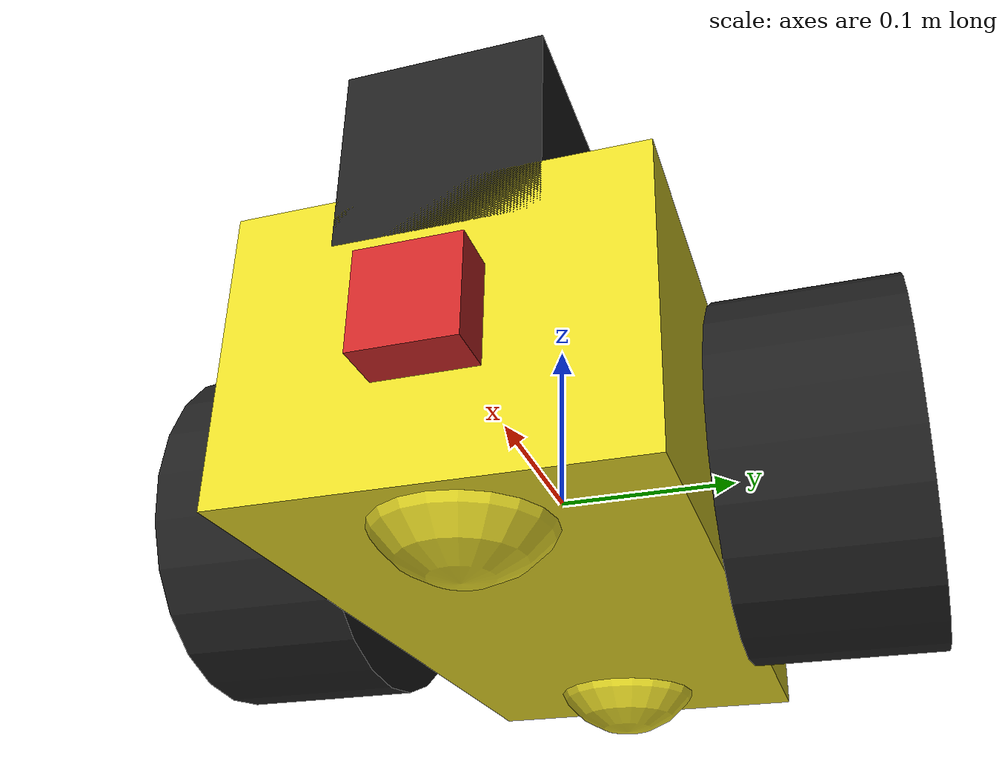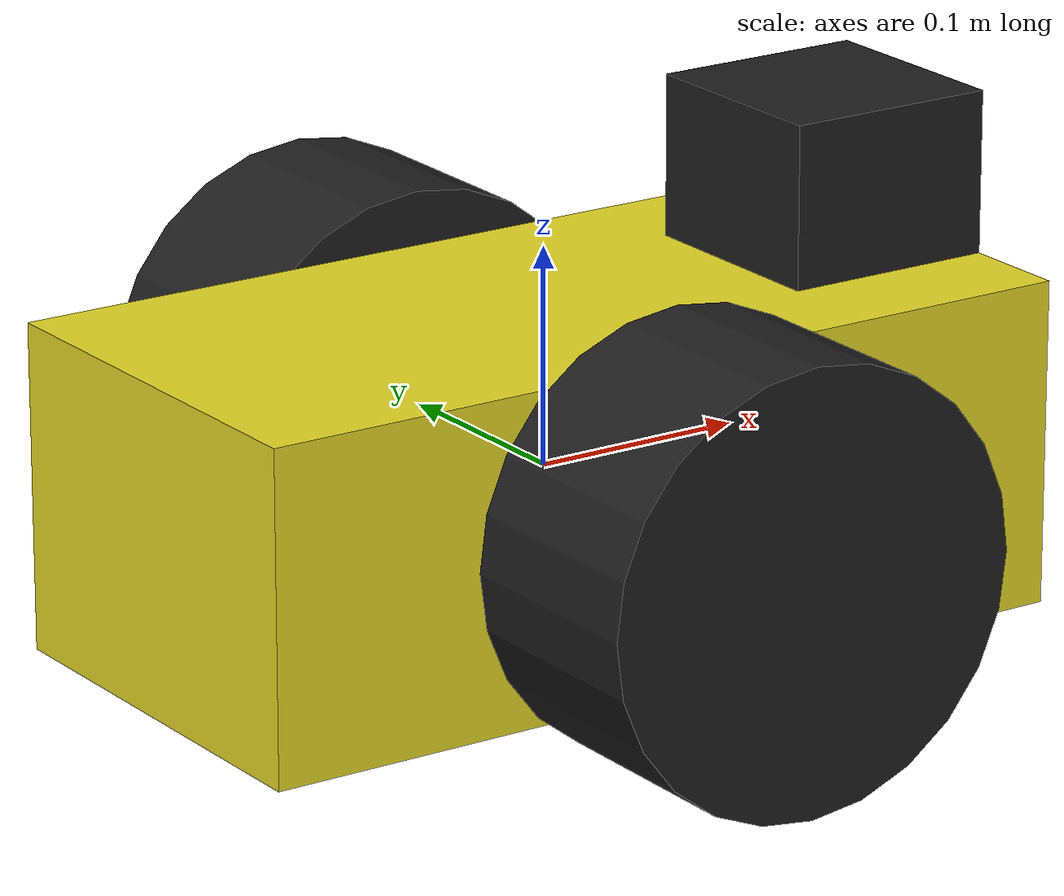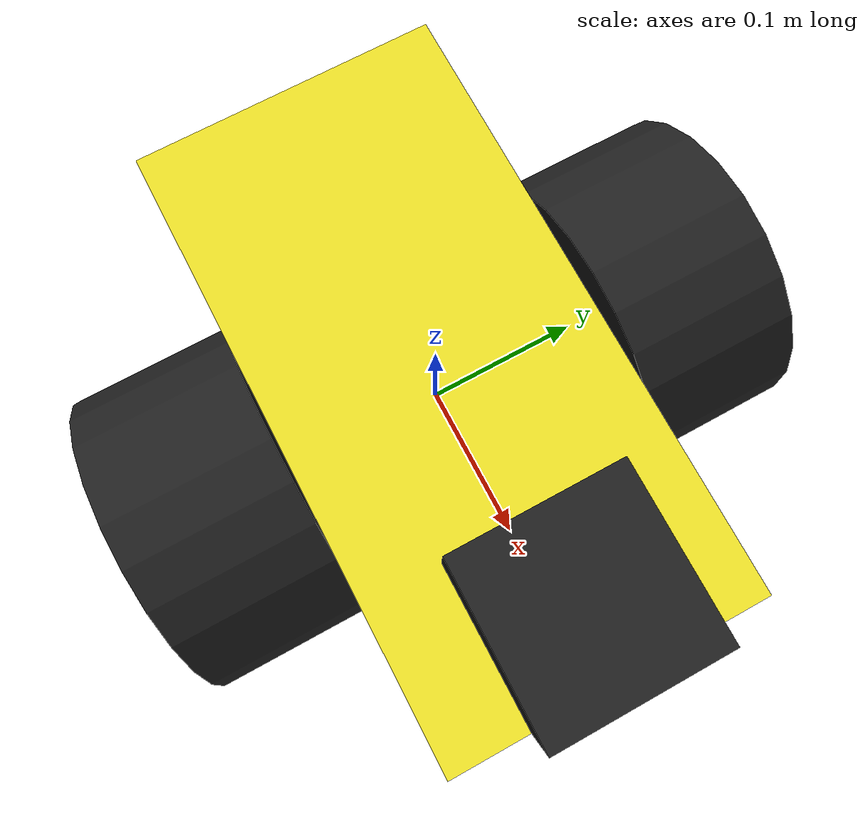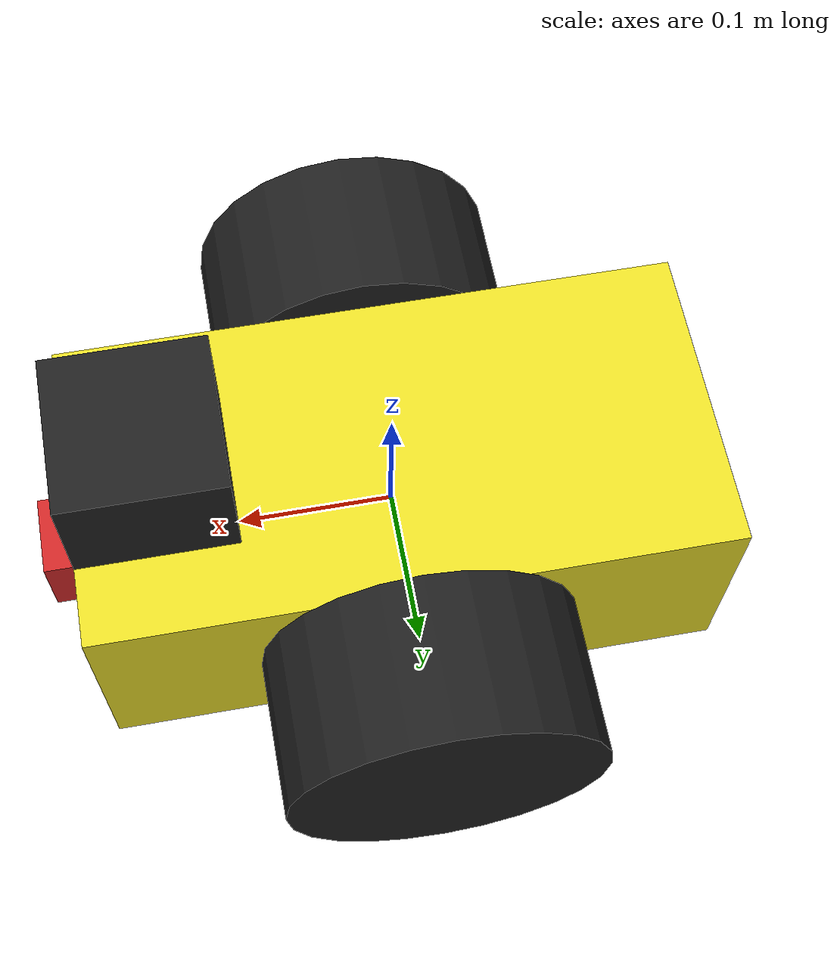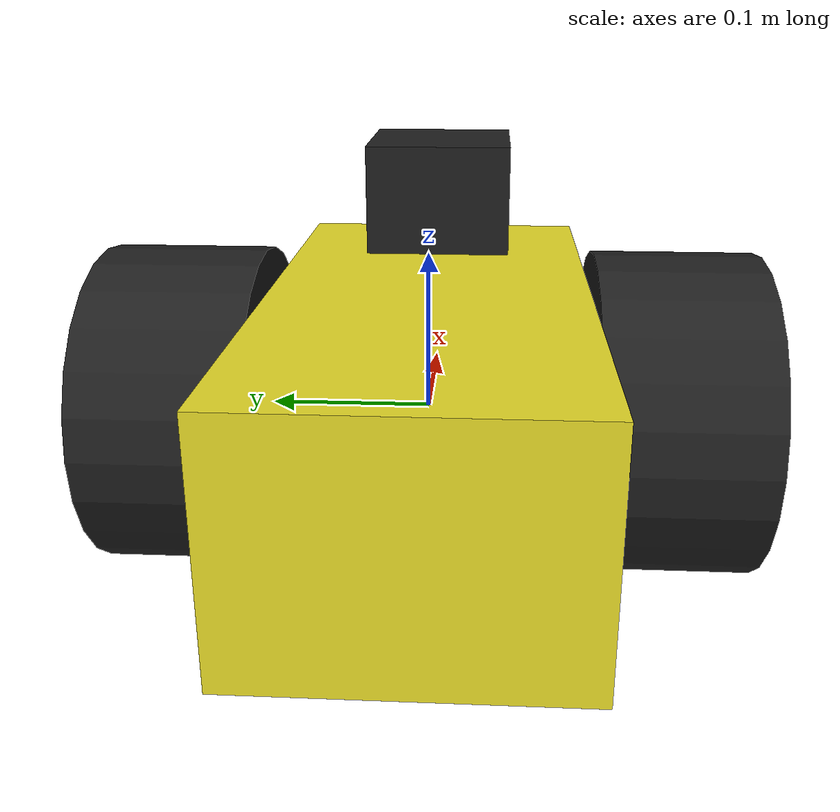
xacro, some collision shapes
<?xml version='1.0'?>

<robot name="my_robot" xmlns:xacro="http://www.ros.org/wiki/xacro">

  <xacro:include filename="$(find my_robot)/urdf/my_robot.gazebo" />

  <link name="robot_footprint"></link>

  <joint name="robot_footprint_joint" type="fixed">
    <origin xyz="0 0 0" rpy="0 0 0" />
    <parent link="robot_footprint"/>
    <child link="chassis" />
  </joint>

  <link name='chassis'>
    <pose>0 0 0.1 0 0 0</pose>

    <inertial>
      <mass value="15.0"/>
      <origin xyz="0.0 0 0" rpy=" 0 0 0"/>
      <inertia
          ixx="0.1" ixy="0" ixz="0"
          iyy="0.1" iyz="0"
          izz="0.1"
      />
    </inertial>

    <collision name='collision'>
      <origin xyz="0 0 0" rpy=" 0 0 0"/>
      <geometry>
        <box size=".4 .2 .15"/>
      </geometry>
    </collision>

    <visual name='chassis_visual'>
      <origin xyz="0 0 0" rpy=" 0 0 0"/>
      <geometry>
        <box size=".4 .2 .15"/>
      </geometry>
    </visual>

    <collision name='back_caster_collision'>
      <origin xyz="-0.15 0 -0.05" rpy=" 0 0 0"/>
      <geometry>
        <sphere radius="0.0499"/>
      </geometry>
    </collision>

    <visual name='back_caster_visual'>
      <origin xyz="-0.15 0 -0.05" rpy=" 0 0 0"/>
      <geometry>
        <sphere radius="0.05"/>
      </geometry>
    </visual>

    <collision name='front_caster_collision'>
      <origin xyz="0.15 0 -0.05" rpy=" 0 0 0"/>
      <geometry>
        <sphere radius="0.0499"/>
      </geometry>
    </collision>

    <visual name='front_caster_visual'>
      <origin xyz="0.15 0 -0.05" rpy=" 0 0 0"/>
      <geometry>
        <sphere radius="0.05"/>
      </geometry>
    </visual>

  </link>

 <gazebo reference="chassis">
    <material>Gazebo/Yellow</material>
  </gazebo>

    <link name='left_wheel'>
    <inertial>
      <mass value="5.0"/>
      <origin xyz="0.0 0 0" rpy=" 0 0 0"/>
      <inertia
          ixx="0.1" ixy="0" ixz="0"
          iyy="0.1" iyz="0"
          izz="0.1"
      />
    </inertial>
    <collision name='left_wheel_collision'>
      <origin xyz="0 0 0" rpy=" 0 1.5707 1.5707"/>
      <geometry>
        <cylinder radius="0.1" length="0.1"/>
      </geometry>
    </collision>
    <visual name='left_wheel_visual'>
      <origin xyz="0 0 0" rpy=" 0 1.5707 1.5707"/>
      <geometry>
        <cylinder radius="0.1" length="0.1"/>
      </geometry>
    </visual>
  </link>
  <gazebo reference="left_wheel">
    <material>Gazebo/Black</material>
  </gazebo>

  <link name='right_wheel'>
    <inertial>
      <mass value="5.0"/>
      <origin xyz="0.0 0 0" rpy=" 0 0 0"/>
      <inertia
          ixx="0.1" ixy="0" ixz="0"
          iyy="0.1" iyz="0"
          izz="0.1"
      />
    </inertial>
    <collision name='right_wheel_collision'>
      <origin xyz="0 0 0" rpy=" 0 1.5707 1.5707"/>
      <geometry>
        <cylinder radius="0.1" length="0.1"/>
      </geometry>
    </collision>
    <visual name='right_wheel_visual'>
      <origin xyz="0 0 0" rpy=" 0 1.5707 1.5707"/>
      <geometry>
        <cylinder radius="0.1" length="0.1"/>
      </geometry>
    </visual>
  </link>

  <gazebo reference="right_wheel">
    <material>Gazebo/Black</material>
  </gazebo>

  <link name='camera'>
    <box_inertia m="0.1" w="0.05" h="0.05" d="0.05"/>
    <inertial>
      <mass value="0.1"/>
      <origin xyz="0.0 0 0" rpy=" 0 0 0"/>
      <inertia
          ixx="0.1" ixy="0" ixz="0"
          iyy="0.1" iyz="0"
          izz="0.1"
      />
    </inertial>
    <collision name='camera_collision'>
      <origin xyz="0 0 0" rpy=" 0 0 0"/>
      <geometry>
        <box size=".05 .05 .05"/>
      </geometry>
    </collision>
    <visual name='camera_visual'>
      <origin xyz="0 0 0" rpy=" 0 0 0"/>
      <geometry>
        <box size=".05 .05 .05"/>
      </geometry>
    </visual>
  </link>

 <gazebo reference="camera">
    <material>Gazebo/Red</material>
  </gazebo>

 <link name='hokuyo'>
    <pose>0 0 0 0 0 0</pose>

    <inertial>
      <mass value="1e-5"/>
      <origin xyz="0.0 0 0" rpy="0.0 0 0"/>
      <inertia
          ixx="1e-6" ixy="0" ixz="0"
          iyy="1e-6" iyz="0"
          izz="1e-6"
      />
    </inertial>

    <collision name='collision'>
      <origin xyz="0 0 0" rpy=" 0 0 0"/>
      <geometry>
        <box size="0.1 0.1 0.1"/>
      </geometry>
    </collision>

    <visual name='hokuyo_visual'>
      <origin xyz="0 0 0" rpy="0 0 0"/>
      <geometry>
        <mesh filename="package://my_robot/meshes/hokuyo.dae"/>
      </geometry>
    </visual>
  </link>

   <gazebo reference="hokuyo">
    <material>Gazebo/Black</material>
  </gazebo>

  <joint name="hokuyo_joint" type="fixed">
    <origin xyz="0.15 0 0.1" rpy="0 0 0" />
    <parent link="chassis"/>
    <child link="hokuyo" />
    <axis xyz="0 1 0" rpy="0 0 0"/>
  </joint>

  <joint type="fixed" name="camera_joint">
    <origin xyz="0.2 0 0" rpy="0 0 0"/>
    <child link="camera"/>
    <parent link="chassis"/>
    <axis xyz="0 1 0" rpy="0 0 0"/>
    <limit effort="10000" velocity="1000"/>
    <dynamics damping="1.0" friction="1.0"/>
  </joint>

  <joint type="continuous" name="left_wheel_hinge">
    <origin xyz="0 0.15 0" rpy="0 0 0"/>
    <child link="left_wheel"/>
    <parent link="chassis"/>
    <axis xyz="0 1 0" rpy="0 0 0"/>
    <limit effort="10000" velocity="1000"/>
    <dynamics damping="1.0" friction="1.0"/>
  </joint>

  <joint type="continuous" name="right_wheel_hinge">
    <origin xyz="0 -0.15 0" rpy="0 0 0"/>
    <child link="right_wheel"/>
    <parent link="chassis"/>
    <axis xyz="0 1 0" rpy="0 0 0"/>
    <limit effort="10000" velocity="1000"/>
    <dynamics damping="1.0" friction="1.0"/>
  </joint>

</robot>
